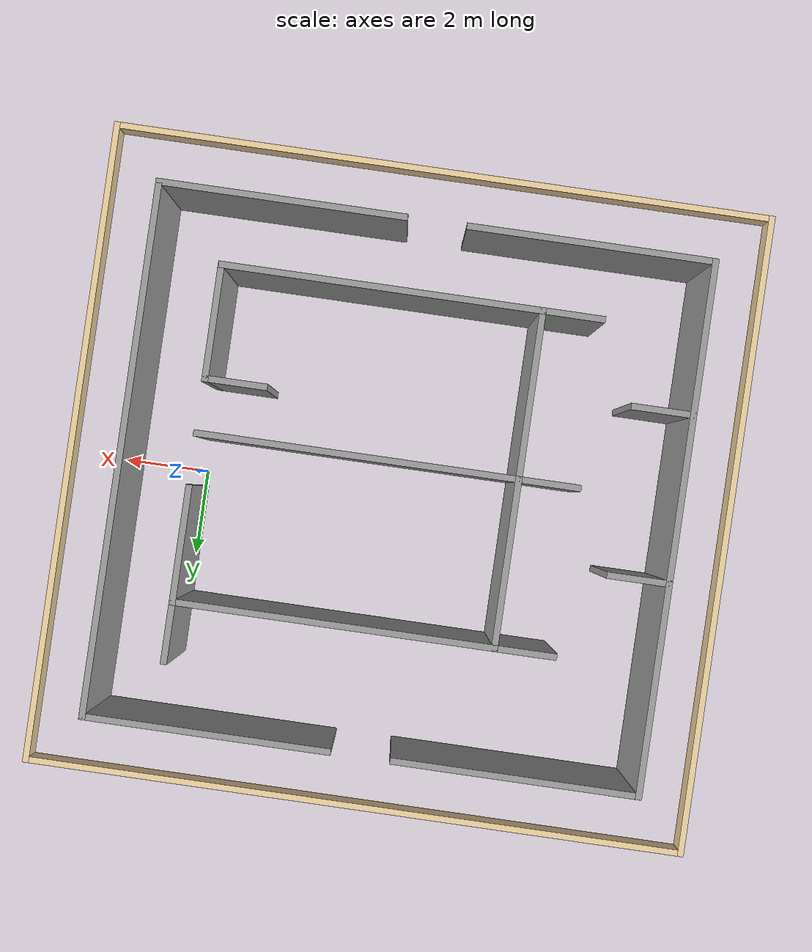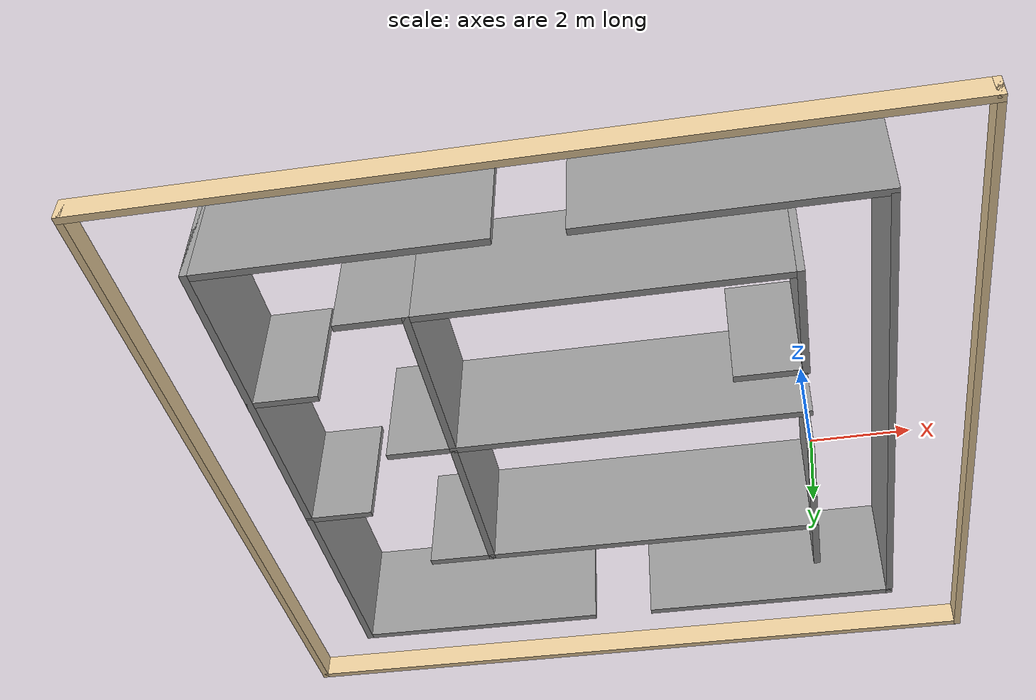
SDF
<?xml version='1.0'?>
<sdf version='1.6'>
  <model name='indoor_wolrd_01'>
    <pose frame=''>-4.7 -0.25 0 0 -0 0</pose>
    <link name='Wall_10'>
      <collision name='Wall_10_Collision'>
        <geometry>
          <box>
            <size>7.47687 0.15 2.5</size>
          </box>
        </geometry>
        <pose frame=''>0 0 1.25 0 -0 0</pose>
      </collision>
      <visual name='Wall_10_Visual'>
        <pose frame=''>0 0 1.25 0 -0 0</pose>
        <geometry>
          <box>
            <size>7.47687 0.15 2.5</size>
          </box>
        </geometry>
        <material>
          <script>
            <uri>file://media/materials/scripts/gazebo.material</uri>
            <name>Gazebo/Grey</name>
          </script>
          <ambient>1 1 1 1</ambient>
        </material>
        <meta>
          <layer>0</layer>
        </meta>
      </visual>
      <pose frame=''>1.01343 -4.45 0 0 -0 0</pose>
    </link>
    <link name='Wall_11'>
      <collision name='Wall_11_Collision'>
        <geometry>
          <box>
            <size>2.75 0.15 2.5</size>
          </box>
        </geometry>
        <pose frame=''>0 0 1.25 0 -0 0</pose>
      </collision>
      <visual name='Wall_11_Visual'>
        <pose frame=''>0 0 1.25 0 -0 0</pose>
        <geometry>
          <box>
            <size>2.75 0.15 2.5</size>
          </box>
        </geometry>
        <material>
          <script>
            <uri>file://media/materials/scripts/gazebo.material</uri>
            <name>Gazebo/Grey</name>
          </script>
          <ambient>1 1 1 1</ambient>
        </material>
        <meta>
          <layer>0</layer>
        </meta>
      </visual>
      <pose frame=''>4.68844 -3.15 0 0 -0 1.5708</pose>
    </link>
    <link name='Wall_12'>
      <collision name='Wall_12_Collision'>
        <geometry>
          <box>
            <size>1.5 0.15 2.5</size>
          </box>
        </geometry>
        <pose frame=''>0 0 1.25 0 -0 0</pose>
      </collision>
      <visual name='Wall_12_Visual'>
        <pose frame=''>0 0 1.25 0 -0 0</pose>
        <geometry>
          <box>
            <size>1.5 0.15 2.5</size>
          </box>
        </geometry>
        <material>
          <script>
            <uri>file://media/materials/scripts/gazebo.material</uri>
            <name>Gazebo/Grey</name>
          </script>
          <ambient>1 1 1 1</ambient>
        </material>
        <meta>
          <layer>0</layer>
        </meta>
      </visual>
      <pose frame=''>4.01344 -1.85 0 0 -0 3.14159</pose>
    </link>
    <link name='Wall_14'>
      <collision name='Wall_14_Collision'>
        <geometry>
          <box>
            <size>1.5 0.15 2.5</size>
          </box>
        </geometry>
        <pose frame=''>0 0 1.25 0 -0 0</pose>
      </collision>
      <visual name='Wall_14_Visual'>
        <pose frame=''>0 0 1.25 0 -0 0</pose>
        <geometry>
          <box>
            <size>1.5 0.15 2.5</size>
          </box>
        </geometry>
        <material>
          <script>
            <uri>file://media/materials/scripts/gazebo.material</uri>
            <name>Gazebo/Grey</name>
          </script>
          <ambient>1 1 1 1</ambient>
        </material>
        <meta>
          <layer>0</layer>
        </meta>
      </visual>
      <pose frame=''>4.7 3.925 0 0 -0 1.5708</pose>
    </link>
    <link name='Wall_16'>
      <collision name='Wall_16_Collision'>
        <geometry>
          <box>
            <size>1.5 0.15 2.5</size>
          </box>
        </geometry>
        <pose frame=''>0 0 1.25 0 -0 0</pose>
      </collision>
      <visual name='Wall_16_Visual'>
        <pose frame=''>0 0 1.25 0 -0 0</pose>
        <geometry>
          <box>
            <size>1.5 0.15 2.5</size>
          </box>
        </geometry>
        <material>
          <script>
            <uri>file://media/materials/scripts/gazebo.material</uri>
            <name>Gazebo/Grey</name>
          </script>
          <ambient>1 1 1 1</ambient>
        </material>
        <meta>
          <layer>0</layer>
        </meta>
      </visual>
      <pose frame=''>-3.325 3.25 0 0 -0 3.14159</pose>
    </link>
    <link name='Wall_18'>
      <collision name='Wall_18_Collision'>
        <geometry>
          <box>
            <size>1.5 0.15 2.5</size>
          </box>
        </geometry>
        <pose frame=''>0 0 1.25 0 -0 0</pose>
      </collision>
      <visual name='Wall_18_Visual'>
        <pose frame=''>0 0 1.25 0 -0 0</pose>
        <geometry>
          <box>
            <size>1.5 0.15 2.5</size>
          </box>
        </geometry>
        <material>
          <script>
            <uri>file://media/materials/scripts/gazebo.material</uri>
            <name>Gazebo/Grey</name>
          </script>
          <ambient>1 1 1 1</ambient>
        </material>
        <meta>
          <layer>0</layer>
        </meta>
      </visual>
      <pose frame=''>-3.325 -0.6 0 0 -0 3.14159</pose>
    </link>
    <link name='Wall_20'>
      <collision name='Wall_20_Collision'>
        <geometry>
          <box>
            <size>1.5 0.15 2.5</size>
          </box>
        </geometry>
        <pose frame=''>0 0 1.25 0 -0 0</pose>
      </collision>
      <visual name='Wall_20_Visual'>
        <pose frame=''>0 0 1.25 0 -0 0</pose>
        <geometry>
          <box>
            <size>1.5 0.15 2.5</size>
          </box>
        </geometry>
        <material>
          <script>
            <uri>file://media/materials/scripts/gazebo.material</uri>
            <name>Gazebo/Grey</name>
          </script>
          <ambient>1 1 1 1</ambient>
        </material>
        <meta>
          <layer>0</layer>
        </meta>
      </visual>
      <pose frame=''>-3.325 -4.45 0 0 -0 3.14159</pose>
    </link>
    <link name='Wall_22'>
      <collision name='Wall_22_Collision'>
        <geometry>
          <box>
            <size>12.35 0.15 2.5</size>
          </box>
        </geometry>
        <pose frame=''>0 0 1.25 0 -0 0</pose>
      </collision>
      <visual name='Wall_22_Visual'>
        <pose frame=''>0 0 1.25 0 -0 0</pose>
        <geometry>
          <box>
            <size>12.35 0.15 2.5</size>
          </box>
        </geometry>
        <material>
          <script>
            <uri>file://media/materials/scripts/gazebo.material</uri>
            <name>Gazebo/Grey</name>
          </script>
          <ambient>1 1 1 1</ambient>
        </material>
        <meta>
          <layer>0</layer>
        </meta>
      </visual>
      <pose frame=''>-6.35 0 0 0 -0 -1.5708</pose>
    </link>
    <link name='Wall_27'>
      <collision name='Wall_27_Collision'>
        <geometry>
          <box>
            <size>1.5 0.15 2.5</size>
          </box>
        </geometry>
        <pose frame=''>0 0 1.25 0 -0 0</pose>
      </collision>
      <visual name='Wall_27_Visual'>
        <pose frame=''>0 0 1.25 0 -0 0</pose>
        <geometry>
          <box>
            <size>1.5 0.15 2.5</size>
          </box>
        </geometry>
        <material>
          <script>
            <uri>file://media/materials/scripts/gazebo.material</uri>
            <name>Gazebo/Grey</name>
          </script>
          <ambient>1 1 1 1</ambient>
        </material>
        <meta>
          <layer>0</layer>
        </meta>
      </visual>
      <pose frame=''>-5.675 -2.6 0 0 -0 0</pose>
    </link>
    <link name='Wall_29'>
      <collision name='Wall_29_Collision'>
        <geometry>
          <box>
            <size>15.65 0.15 0.5</size>
          </box>
        </geometry>
        <pose frame=''>0 0 0.25 0 -0 0</pose>
      </collision>
      <visual name='Wall_29_Visual'>
        <pose frame=''>0 0 0.25 0 -0 0</pose>
        <geometry>
          <box>
            <size>15.65 0.15 0.5</size>
          </box>
        </geometry>
        <material>
          <script>
            <uri>file://media/materials/scripts/gazebo.material</uri>
            <name>Gazebo/Grey</name>
          </script>
          <ambient>0.921569 0.807843 0.615686 1</ambient>
        </material>
        <meta>
          <layer>0</layer>
        </meta>
      </visual>
      <pose frame=''>-8 0 0 0 -0 -1.5708</pose>
    </link>
    <link name='Wall_34'>
      <collision name='Wall_34_Collision'>
        <geometry>
          <box>
            <size>1.5 0.15 2.5</size>
          </box>
        </geometry>
        <pose frame=''>0 0 1.25 0 -0 0</pose>
      </collision>
      <visual name='Wall_34_Visual'>
        <pose frame=''>0 0 1.25 0 -0 0</pose>
        <geometry>
          <box>
            <size>1.5 0.15 2.5</size>
          </box>
        </geometry>
        <material>
          <script>
            <uri>file://media/materials/scripts/gazebo.material</uri>
            <name>Gazebo/Grey</name>
          </script>
          <ambient>1 1 1 1</ambient>
        </material>
        <meta>
          <layer>0</layer>
        </meta>
      </visual>
      <pose frame=''>-5.675 1.25 0 0 -0 0</pose>
    </link>
    <link name='Wall_36'>
      <collision name='Wall_36_Collision'>
        <geometry>
          <box>
            <size>12.25 0.15 2.5</size>
          </box>
        </geometry>
        <pose frame=''>0 0 1.25 0 -0 0</pose>
      </collision>
      <visual name='Wall_36_Visual'>
        <pose frame=''>0 0 1.25 0 -0 0</pose>
        <geometry>
          <box>
            <size>12.25 0.15 2.5</size>
          </box>
        </geometry>
        <material>
          <script>
            <uri>file://media/materials/scripts/gazebo.material</uri>
            <name>Gazebo/Grey</name>
          </script>
          <ambient>1 1 1 1</ambient>
        </material>
        <meta>
          <layer>0</layer>
        </meta>
      </visual>
      <pose frame=''>6.35 0.05 0 0 -0 -1.5708</pose>
    </link>
    <link name='Wall_4'>
      <collision name='Wall_4_Collision'>
        <geometry>
          <box>
            <size>2.75 0.15 2.5</size>
          </box>
        </geometry>
        <pose frame=''>0 0 1.25 0 -0 0</pose>
      </collision>
      <visual name='Wall_4_Visual'>
        <pose frame=''>0 0 1.25 0 -0 0</pose>
        <geometry>
          <box>
            <size>2.75 0.15 2.5</size>
          </box>
        </geometry>
        <material>
          <script>
            <uri>file://media/materials/scripts/gazebo.material</uri>
            <name>Gazebo/Grey</name>
          </script>
          <ambient>1 1 1 1</ambient>
        </material>
        <meta>
          <layer>0</layer>
        </meta>
      </visual>
      <pose frame=''>4.7 1.95 0 0 -0 1.5708</pose>
    </link>
    <link name='Wall_40'>
      <collision name='Wall_40_Collision'>
        <geometry>
          <box>
            <size>15.65 0.15 0.5</size>
          </box>
        </geometry>
        <pose frame=''>0 0 0.25 0 -0 0</pose>
      </collision>
      <visual name='Wall_40_Visual'>
        <pose frame=''>0 0 0.25 0 -0 0</pose>
        <geometry>
          <box>
            <size>15.65 0.15 0.5</size>
          </box>
        </geometry>
        <material>
          <script>
            <uri>file://media/materials/scripts/gazebo.material</uri>
            <name>Gazebo/Grey</name>
          </script>
          <ambient>0.921569 0.807843 0.615686 1</ambient>
        </material>
        <meta>
          <layer>0</layer>
        </meta>
      </visual>
      <pose frame=''>8 0 0 0 -0 -1.5708</pose>
    </link>
    <link name='Wall_49'>
      <collision name='Wall_49_Collision'>
        <geometry>
          <box>
            <size>16.15 0.15 0.5</size>
          </box>
        </geometry>
        <pose frame=''>0 0 0.25 0 -0 0</pose>
      </collision>
      <visual name='Wall_49_Visual'>
        <pose frame=''>0 0 0.25 0 -0 0</pose>
        <geometry>
          <box>
            <size>16.15 0.15 0.5</size>
          </box>
        </geometry>
        <material>
          <script>
            <uri>file://media/materials/scripts/gazebo.material</uri>
            <name>Gazebo/Grey</name>
          </script>
          <ambient>0.921569 0.807843 0.615686 1</ambient>
        </material>
        <meta>
          <layer>0</layer>
        </meta>
      </visual>
      <pose frame=''>0 7.75 0 0 -0 0</pose>
    </link>
    <link name='Wall_5'>
      <collision name='Wall_5_Collision'>
        <geometry>
          <box>
            <size>7.5 0.15 2.5</size>
          </box>
        </geometry>
        <pose frame=''>0 0 1.25 0 -0 0</pose>
      </collision>
      <visual name='Wall_5_Visual'>
        <pose frame=''>0 0 1.25 0 -0 0</pose>
        <geometry>
          <box>
            <size>7.5 0.15 2.5</size>
          </box>
        </geometry>
        <material>
          <script>
            <uri>file://media/materials/scripts/gazebo.material</uri>
            <name>Gazebo/Grey</name>
          </script>
          <ambient>1 1 1 1</ambient>
        </material>
        <meta>
          <layer>0</layer>
        </meta>
      </visual>
      <pose frame=''>1.025 3.25 0 0 -0 3.14159</pose>
    </link>
    <link name='Wall_51'>
      <collision name='Wall_51_Collision'>
        <geometry>
          <box>
            <size>16.15 0.15 0.5</size>
          </box>
        </geometry>
        <pose frame=''>0 0 0.25 0 -0 0</pose>
      </collision>
      <visual name='Wall_51_Visual'>
        <pose frame=''>0 0 0.25 0 -0 0</pose>
        <geometry>
          <box>
            <size>16.15 0.15 0.5</size>
          </box>
        </geometry>
        <material>
          <script>
            <uri>file://media/materials/scripts/gazebo.material</uri>
            <name>Gazebo/Grey</name>
          </script>
          <ambient>0.921569 0.807843 0.615686 1</ambient>
        </material>
        <meta>
          <layer>0</layer>
        </meta>
      </visual>
      <pose frame=''>0 -7.75 0 0 -0 0</pose>
    </link>
    <link name='Wall_53'>
      <collision name='Wall_53_Collision'>
        <geometry>
          <box>
            <size>5.75 0.15 2.5</size>
          </box>
        </geometry>
        <pose frame=''>0 0 1.25 0 -0 0</pose>
      </collision>
      <visual name='Wall_53_Visual'>
        <pose frame=''>0 0 1.25 0 -0 0</pose>
        <geometry>
          <box>
            <size>5.75 0.15 2.5</size>
          </box>
        </geometry>
        <material>
          <script>
            <uri>file://media/materials/scripts/gazebo.material</uri>
            <name>Gazebo/Grey</name>
          </script>
          <ambient>1 1 1 1</ambient>
        </material>
        <meta>
          <layer>0</layer>
        </meta>
      </visual>
      <pose frame=''>-3.55 -6.1 0 0 -0 0</pose>
    </link>
    <link name='Wall_55'>
      <collision name='Wall_55_Collision'>
        <geometry>
          <box>
            <size>5.75 0.15 2.5</size>
          </box>
        </geometry>
        <pose frame=''>0 0 1.25 0 -0 0</pose>
      </collision>
      <visual name='Wall_55_Visual'>
        <pose frame=''>0 0 1.25 0 -0 0</pose>
        <geometry>
          <box>
            <size>5.75 0.15 2.5</size>
          </box>
        </geometry>
        <material>
          <script>
            <uri>file://media/materials/scripts/gazebo.material</uri>
            <name>Gazebo/Grey</name>
          </script>
          <ambient>1 1 1 1</ambient>
        </material>
        <meta>
          <layer>0</layer>
        </meta>
      </visual>
      <pose frame=''>3.55 -6.1 0 0 -0 3.14159</pose>
    </link>
    <link name='Wall_58'>
      <collision name='Wall_58_Collision'>
        <geometry>
          <box>
            <size>0.15 0.15 2.5</size>
          </box>
        </geometry>
        <pose frame=''>0 0 1.25 0 -0 0</pose>
      </collision>
      <visual name='Wall_58_Visual'>
        <pose frame=''>0 0 1.25 0 -0 0</pose>
        <geometry>
          <box>
            <size>0.15 0.15 2.5</size>
          </box>
        </geometry>
        <material>
          <script>
            <uri>file://media/materials/scripts/gazebo.material</uri>
            <name>Gazebo/Grey</name>
          </script>
          <ambient>1 1 1 1</ambient>
        </material>
        <meta>
          <layer>0</layer>
        </meta>
      </visual>
      <pose frame=''>6.35 6.1 0 0 -0 0</pose>
    </link>
    <link name='Wall_6'>
      <collision name='Wall_6_Collision'>
        <geometry>
          <box>
            <size>4 0.15 2.5</size>
          </box>
        </geometry>
        <pose frame=''>0 0 1.25 0 -0 0</pose>
      </collision>
      <visual name='Wall_6_Visual'>
        <pose frame=''>0 0 1.25 0 -0 0</pose>
        <geometry>
          <box>
            <size>4 0.15 2.5</size>
          </box>
        </geometry>
        <material>
          <script>
            <uri>file://media/materials/scripts/gazebo.material</uri>
            <name>Gazebo/Grey</name>
          </script>
          <ambient>1 1 1 1</ambient>
        </material>
        <meta>
          <layer>0</layer>
        </meta>
      </visual>
      <pose frame=''>-2.65 1.325 0 0 -0 -1.5708</pose>
    </link>
    <link name='Wall_7'>
      <collision name='Wall_7_Collision'>
        <geometry>
          <box>
            <size>7.5 0.15 2.5</size>
          </box>
        </geometry>
        <pose frame=''>0 0 1.25 0 -0 0</pose>
      </collision>
      <visual name='Wall_7_Visual'>
        <pose frame=''>0 0 1.25 0 -0 0</pose>
        <geometry>
          <box>
            <size>7.5 0.15 2.5</size>
          </box>
        </geometry>
        <material>
          <script>
            <uri>file://media/materials/scripts/gazebo.material</uri>
            <name>Gazebo/Grey</name>
          </script>
          <ambient>1 1 1 1</ambient>
        </material>
        <meta>
          <layer>0</layer>
        </meta>
      </visual>
      <pose frame=''>1.025 -0.6 0 0 -0 0</pose>
    </link>
    <link name='Wall_76'>
      <collision name='Wall_76_Collision'>
        <geometry>
          <box>
            <size>5.75 0.15 2.5</size>
          </box>
        </geometry>
        <pose frame=''>0 0 1.25 0 -0 0</pose>
      </collision>
      <visual name='Wall_76_Visual'>
        <pose frame=''>0 0 1.25 0 -0 0</pose>
        <geometry>
          <box>
            <size>5.75 0.15 2.5</size>
          </box>
        </geometry>
        <material>
          <script>
            <uri>file://media/materials/scripts/gazebo.material</uri>
            <name>Gazebo/Grey</name>
          </script>
          <ambient>1 1 1 1</ambient>
        </material>
        <meta>
          <layer>0</layer>
        </meta>
      </visual>
      <pose frame=''>3.55 6.1 0 0 -0 3.14159</pose>
    </link>
    <link name='Wall_78'>
      <collision name='Wall_78_Collision'>
        <geometry>
          <box>
            <size>5.75 0.15 2.5</size>
          </box>
        </geometry>
        <pose frame=''>0 0 1.25 0 -0 0</pose>
      </collision>
      <visual name='Wall_78_Visual'>
        <pose frame=''>0 0 1.25 0 -0 0</pose>
        <geometry>
          <box>
            <size>5.75 0.15 2.5</size>
          </box>
        </geometry>
        <material>
          <script>
            <uri>file://media/materials/scripts/gazebo.material</uri>
            <name>Gazebo/Grey</name>
          </script>
          <ambient>1 1 1 1</ambient>
        </material>
        <meta>
          <layer>0</layer>
        </meta>
      </visual>
      <pose frame=''>-3.55 6.1 0 0 -0 0</pose>
    </link>
    <link name='Wall_9'>
      <collision name='Wall_9_Collision'>
        <geometry>
          <box>
            <size>4 0.15 2.5</size>
          </box>
        </geometry>
        <pose frame=''>0 0 1.25 0 -0 0</pose>
      </collision>
      <visual name='Wall_9_Visual'>
        <pose frame=''>0 0 1.25 0 -0 0</pose>
        <geometry>
          <box>
            <size>4 0.15 2.5</size>
          </box>
        </geometry>
        <material>
          <script>
            <uri>file://media/materials/scripts/gazebo.material</uri>
            <name>Gazebo/Grey</name>
          </script>
          <ambient>1 1 1 1</ambient>
        </material>
        <meta>
          <layer>0</layer>
        </meta>
      </visual>
      <pose frame=''>-2.65 -2.525 0 0 -0 -1.5708</pose>
    </link>
    <static>1</static>
  </model>
</sdf>
